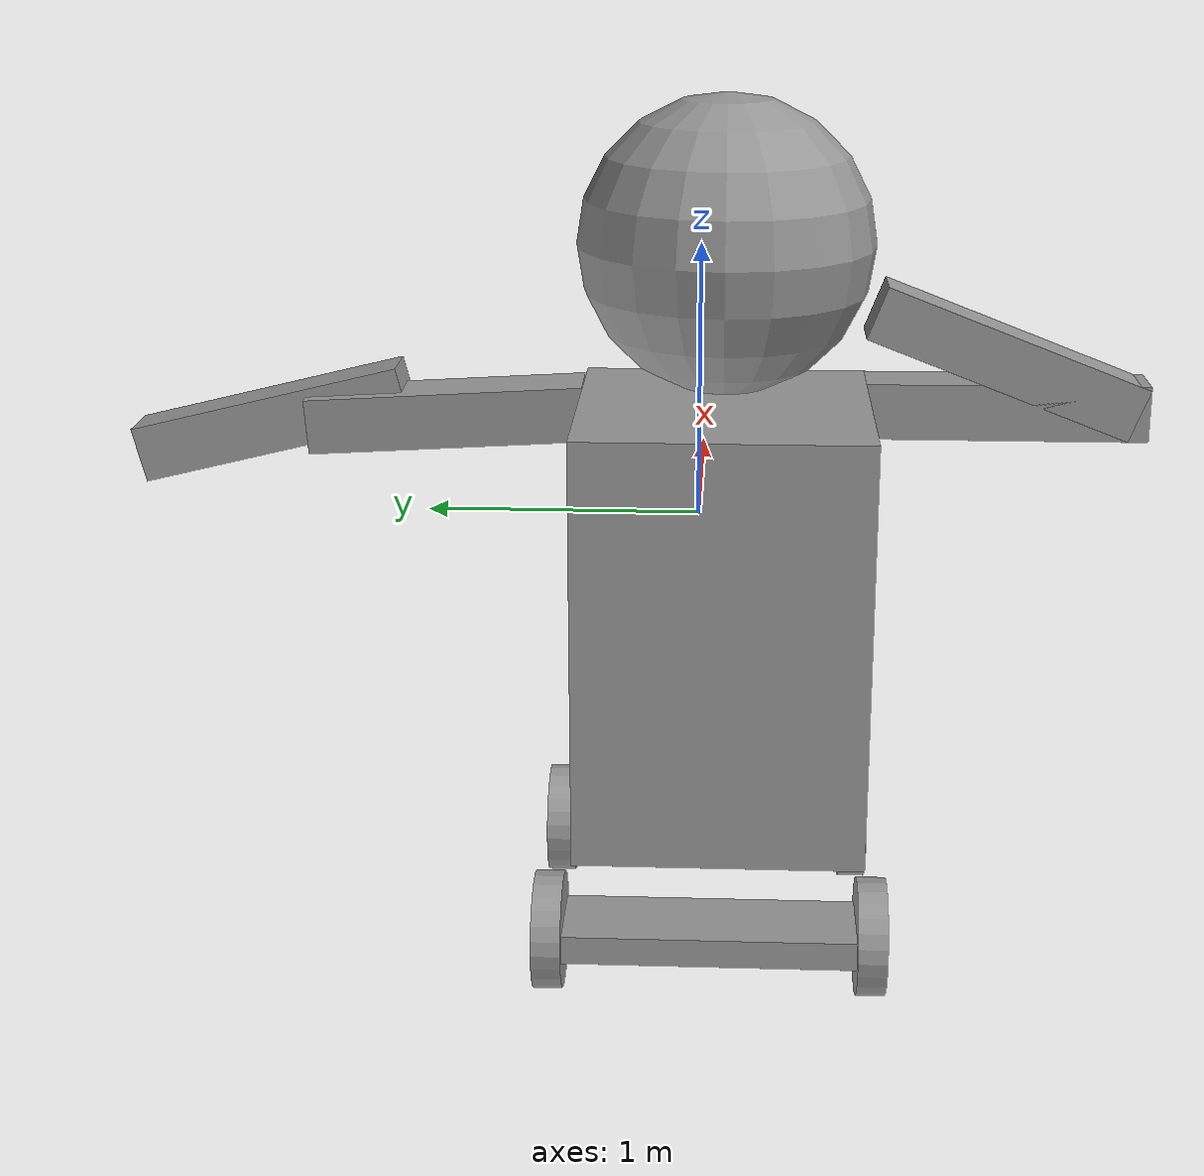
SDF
<?xml version='1.0'?>
<sdf version='1.7'>
  <model name='humanoid_robot'>
    <scale>200 200 200</scale>
    <link name='link_1'>
      <inertial>
        <mass>2.10479</mass>
        <inertia>
          <ixx>0.952439</ixx>
          <ixy>0</ixy>
          <ixz>0</ixz>
          <iyy>0.952439</iyy>
          <iyz>0</iyz>
          <izz>0.350798</izz>
        </inertia>
        <pose>0 0 0 0 -0 0</pose>
      </inertial>
      <pose>-0.448722 -0.08924 -0.419518 0 -0 0</pose>
      <gravity>1</gravity>
      <self_collide>0</self_collide>
      <kinematic>0</kinematic>
      <enable_wind>0</enable_wind>
      <visual name='visual'>
        <pose>0 0 0.2 0 -0 0</pose>
        <geometry>
          <box>
            <size>1 1 1.5</size>
          </box>
        </geometry>
        <material>
          <lighting>1</lighting>
          <script>
            <uri>file://media/materials/scripts/gazebo.material</uri>
            <name>Gazebo/Grey</name>
          </script>
          <shader type='pixel'>
            <normal_map>__default__</normal_map>
          </shader>
          <ambient>0.3 0.3 0.3 1</ambient>
          <diffuse>0.7 0.7 0.7 1</diffuse>
          <specular>0.01 0.01 0.01 1</specular>
          <emissive>0 0 0 1</emissive>
        </material>
        <transparency>0</transparency>
        <cast_shadows>1</cast_shadows>
      </visual>
      <collision name='collision'>
        <laser_retro>0</laser_retro>
        <max_contacts>10</max_contacts>
        <pose>0 0 0.2 0 -0 0</pose>
        <geometry>
          <box>
            <size>1 1 1.5</size>
          </box>
        </geometry>
        <surface>
          <friction>
            <ode>
              <mu>1</mu>
              <mu2>1</mu2>
              <fdir1>0 0 0</fdir1>
              <slip1>0</slip1>
              <slip2>0</slip2>
            </ode>
            <torsional>
              <coefficient>1</coefficient>
              <patch_radius>0</patch_radius>
              <surface_radius>0</surface_radius>
              <use_patch_radius>1</use_patch_radius>
              <ode>
                <slip>0</slip>
              </ode>
            </torsional>
          </friction>
          <bounce>
            <restitution_coefficient>0</restitution_coefficient>
            <threshold>1e+06</threshold>
          </bounce>
          <contact>
            <collide_without_contact>0</collide_without_contact>
            <collide_without_contact_bitmask>1</collide_without_contact_bitmask>
            <collide_bitmask>1</collide_bitmask>
            <ode>
              <soft_cfm>0</soft_cfm>
              <soft_erp>0.2</soft_erp>
              <kp>1e+13</kp>
              <kd>1</kd>
              <max_vel>0.01</max_vel>
              <min_depth>0</min_depth>
            </ode>
            <bullet>
              <split_impulse>1</split_impulse>
              <split_impulse_penetration_threshold>-0.01</split_impulse_penetration_threshold>
              <soft_cfm>0</soft_cfm>
              <soft_erp>0.2</soft_erp>
              <kp>1e+13</kp>
              <kd>1</kd>
            </bullet>
          </contact>
        </surface>
      </collision>
    </link>
    <link name='link_4'>
      <inertial>
        <mass>1</mass>
        <inertia>
          <ixx>0.1</ixx>
          <ixy>0</ixy>
          <ixz>0</ixz>
          <iyy>0.1</iyy>
          <iyz>0</iyz>
          <izz>0.1</izz>
        </inertia>
        <pose>0 0 0 0 -0 0</pose>
      </inertial>
      <pose>-0.448722 -0.08924 1.08048 0 -0 0</pose>
      <gravity>1</gravity>
      <self_collide>0</self_collide>
      <kinematic>0</kinematic>
      <enable_wind>0</enable_wind>
      <visual name='visual'>
        <pose>0 0 0 0 -0 0</pose>
        <geometry>
          <sphere>
            <radius>0.5</radius>
          </sphere>
        </geometry>
        <material>
          <lighting>1</lighting>
          <script>
            <uri>file://media/materials/scripts/gazebo.material</uri>
            <name>Gazebo/Grey</name>
          </script>
          <shader type='pixel'>
            <normal_map>__default__</normal_map>
          </shader>
          <ambient>0.3 0.3 0.3 1</ambient>
          <diffuse>0.7 0.7 0.7 1</diffuse>
          <specular>0.01 0.01 0.01 1</specular>
          <emissive>0 0 0 1</emissive>
        </material>
        <transparency>0</transparency>
        <cast_shadows>1</cast_shadows>
      </visual>
      <collision name='collision'>
        <laser_retro>0</laser_retro>
        <max_contacts>10</max_contacts>
        <pose>0 0 0 0 -0 0</pose>
        <geometry>
          <sphere>
            <radius>0.5</radius>
          </sphere>
        </geometry>
        <surface>
          <friction>
            <ode>
              <mu>1</mu>
              <mu2>1</mu2>
              <fdir1>0 0 0</fdir1>
              <slip1>0</slip1>
              <slip2>0</slip2>
            </ode>
            <torsional>
              <coefficient>1</coefficient>
              <patch_radius>0</patch_radius>
              <surface_radius>0</surface_radius>
              <use_patch_radius>1</use_patch_radius>
              <ode>
                <slip>0</slip>
              </ode>
            </torsional>
          </friction>
          <bounce>
            <restitution_coefficient>0</restitution_coefficient>
            <threshold>1e+06</threshold>
          </bounce>
          <contact>
            <collide_without_contact>0</collide_without_contact>
            <collide_without_contact_bitmask>1</collide_without_contact_bitmask>
            <collide_bitmask>1</collide_bitmask>
            <ode>
              <soft_cfm>0</soft_cfm>
              <soft_erp>0.2</soft_erp>
              <kp>1e+13</kp>
              <kd>1</kd>
              <max_vel>0.01</max_vel>
              <min_depth>0</min_depth>
            </ode>
            <bullet>
              <split_impulse>1</split_impulse>
              <split_impulse_penetration_threshold>-0.01</split_impulse_penetration_threshold>
              <soft_cfm>0</soft_cfm>
              <soft_erp>0.2</soft_erp>
              <kp>1e+13</kp>
              <kd>1</kd>
            </bullet>
          </contact>
        </surface>
      </collision>
    </link>
    <link name='link_5'>
      <inertial>
        <mass>1</mass>
        <inertia>
          <ixx>0.166667</ixx>
          <ixy>0</ixy>
          <ixz>0</ixz>
          <iyy>0.166667</iyy>
          <iyz>0</iyz>
          <izz>0.166667</izz>
        </inertia>
        <pose>0 0 0 0 -0 0</pose>
      </inertial>
      <pose>-0.088722 0.91076 0.390482 -0.06 -0.04 0</pose>
      <gravity>1</gravity>
      <self_collide>0</self_collide>
      <kinematic>0</kinematic>
      <enable_wind>0</enable_wind>
      <visual name='visual'>
        <pose>0 0 0 0 -0 0</pose>
        <geometry>
          <box>
            <size>0.2 1 0.2</size>
          </box>
        </geometry>
        <material>
          <lighting>1</lighting>
          <script>
            <uri>file://media/materials/scripts/gazebo.material</uri>
            <name>Gazebo/Grey</name>
          </script>
          <shader type='pixel'>
            <normal_map>__default__</normal_map>
          </shader>
          <ambient>0.3 0.3 0.3 1</ambient>
          <diffuse>0.7 0.7 0.7 1</diffuse>
          <specular>0.01 0.01 0.01 1</specular>
          <emissive>0 0 0 1</emissive>
        </material>
        <transparency>0</transparency>
        <cast_shadows>1</cast_shadows>
      </visual>
      <collision name='collision'>
        <laser_retro>0</laser_retro>
        <max_contacts>10</max_contacts>
        <pose>0 0 0 0 -0 0</pose>
        <geometry>
          <box>
            <size>0.2 1 0.2</size>
          </box>
        </geometry>
        <surface>
          <friction>
            <ode>
              <mu>1</mu>
              <mu2>1</mu2>
              <fdir1>0 0 0</fdir1>
              <slip1>0</slip1>
              <slip2>0</slip2>
            </ode>
            <torsional>
              <coefficient>1</coefficient>
              <patch_radius>0</patch_radius>
              <surface_radius>0</surface_radius>
              <use_patch_radius>1</use_patch_radius>
              <ode>
                <slip>0</slip>
              </ode>
            </torsional>
          </friction>
          <bounce>
            <restitution_coefficient>0</restitution_coefficient>
            <threshold>1e+06</threshold>
          </bounce>
          <contact>
            <collide_without_contact>0</collide_without_contact>
            <collide_without_contact_bitmask>1</collide_without_contact_bitmask>
            <collide_bitmask>1</collide_bitmask>
            <ode>
              <soft_cfm>0</soft_cfm>
              <soft_erp>0.2</soft_erp>
              <kp>1e+13</kp>
              <kd>1</kd>
              <max_vel>0.01</max_vel>
              <min_depth>0</min_depth>
            </ode>
            <bullet>
              <split_impulse>1</split_impulse>
              <split_impulse_penetration_threshold>-0.01</split_impulse_penetration_threshold>
              <soft_cfm>0</soft_cfm>
              <soft_erp>0.2</soft_erp>
              <kp>1e+13</kp>
              <kd>1</kd>
            </bullet>
          </contact>
        </surface>
      </collision>
    </link>
    <link name='link_5_clone'>
      <inertial>
        <mass>1</mass>
        <inertia>
          <ixx>0.166667</ixx>
          <ixy>0</ixy>
          <ixz>0</ixz>
          <iyy>0.166667</iyy>
          <iyz>0</iyz>
          <izz>0.166667</izz>
        </inertia>
        <pose>0 0 0 0 -0 0</pose>
      </inertial>
      <pose>-0.048722 -1.08924 0.430482 0 -0 0</pose>
      <gravity>1</gravity>
      <self_collide>0</self_collide>
      <kinematic>0</kinematic>
      <enable_wind>0</enable_wind>
      <visual name='visual'>
        <pose>0 0 0 0 -0 0</pose>
        <geometry>
          <box>
            <size>0.2 1 0.2</size>
          </box>
        </geometry>
        <material>
          <lighting>1</lighting>
          <script>
            <uri>file://media/materials/scripts/gazebo.material</uri>
            <name>Gazebo/Grey</name>
          </script>
          <shader type='pixel'>
            <normal_map>__default__</normal_map>
          </shader>
          <ambient>0.3 0.3 0.3 1</ambient>
          <diffuse>0.7 0.7 0.7 1</diffuse>
          <specular>0.01 0.01 0.01 1</specular>
          <emissive>0 0 0 1</emissive>
        </material>
        <transparency>0</transparency>
        <cast_shadows>1</cast_shadows>
      </visual>
      <collision name='collision'>
        <laser_retro>0</laser_retro>
        <max_contacts>10</max_contacts>
        <pose>0 0 0 0 -0 0</pose>
        <geometry>
          <box>
            <size>0.2 1 0.2</size>
          </box>
        </geometry>
        <surface>
          <friction>
            <ode>
              <mu>1</mu>
              <mu2>1</mu2>
              <fdir1>0 0 0</fdir1>
              <slip1>0</slip1>
              <slip2>0</slip2>
            </ode>
            <torsional>
              <coefficient>1</coefficient>
              <patch_radius>0</patch_radius>
              <surface_radius>0</surface_radius>
              <use_patch_radius>1</use_patch_radius>
              <ode>
                <slip>0</slip>
              </ode>
            </torsional>
          </friction>
          <bounce>
            <restitution_coefficient>0</restitution_coefficient>
            <threshold>1e+06</threshold>
          </bounce>
          <contact>
            <collide_without_contact>0</collide_without_contact>
            <collide_without_contact_bitmask>1</collide_without_contact_bitmask>
            <collide_bitmask>1</collide_bitmask>
            <ode>
              <soft_cfm>0</soft_cfm>
              <soft_erp>0.2</soft_erp>
              <kp>1e+13</kp>
              <kd>1</kd>
              <max_vel>0.01</max_vel>
              <min_depth>0</min_depth>
            </ode>
            <bullet>
              <split_impulse>1</split_impulse>
              <split_impulse_penetration_threshold>-0.01</split_impulse_penetration_threshold>
              <soft_cfm>0</soft_cfm>
              <soft_erp>0.2</soft_erp>
              <kp>1e+13</kp>
              <kd>1</kd>
            </bullet>
          </contact>
        </surface>
      </collision>
    </link>
    <link name='link_5_clone_clone'>
      <inertial>
        <mass>1</mass>
        <inertia>
          <ixx>0.166667</ixx>
          <ixy>0</ixy>
          <ixz>0</ixz>
          <iyy>0.166667</iyy>
          <iyz>0</iyz>
          <izz>0.166667</izz>
        </inertia>
        <pose>0 0 0 0 -0 0</pose>
      </inertial>
      <pose>-0.048722 -1.08689 0.604392 0.369688 -0 0</pose>
      <gravity>1</gravity>
      <self_collide>0</self_collide>
      <kinematic>0</kinematic>
      <enable_wind>0</enable_wind>
      <visual name='visual'>
        <pose>0 0 0 0 -0 0</pose>
        <geometry>
          <box>
            <size>0.2 1 0.2</size>
          </box>
        </geometry>
        <material>
          <lighting>1</lighting>
          <script>
            <uri>file://media/materials/scripts/gazebo.material</uri>
            <name>Gazebo/Grey</name>
          </script>
          <shader type='pixel'>
            <normal_map>__default__</normal_map>
          </shader>
          <ambient>0.3 0.3 0.3 1</ambient>
          <diffuse>0.7 0.7 0.7 1</diffuse>
          <specular>0.01 0.01 0.01 1</specular>
          <emissive>0 0 0 1</emissive>
        </material>
        <transparency>0</transparency>
        <cast_shadows>1</cast_shadows>
      </visual>
      <collision name='collision'>
        <laser_retro>0</laser_retro>
        <max_contacts>10</max_contacts>
        <pose>0 0 0 0 -0 0</pose>
        <geometry>
          <box>
            <size>0.2 1 0.2</size>
          </box>
        </geometry>
        <surface>
          <friction>
            <ode>
              <mu>1</mu>
              <mu2>1</mu2>
              <fdir1>0 0 0</fdir1>
              <slip1>0</slip1>
              <slip2>0</slip2>
            </ode>
            <torsional>
              <coefficient>1</coefficient>
              <patch_radius>0</patch_radius>
              <surface_radius>0</surface_radius>
              <use_patch_radius>1</use_patch_radius>
              <ode>
                <slip>0</slip>
              </ode>
            </torsional>
          </friction>
          <bounce>
            <restitution_coefficient>0</restitution_coefficient>
            <threshold>1e+06</threshold>
          </bounce>
          <contact>
            <collide_without_contact>0</collide_without_contact>
            <collide_without_contact_bitmask>1</collide_without_contact_bitmask>
            <collide_bitmask>1</collide_bitmask>
            <ode>
              <soft_cfm>0</soft_cfm>
              <soft_erp>0.2</soft_erp>
              <kp>1e+13</kp>
              <kd>1</kd>
              <max_vel>0.01</max_vel>
              <min_depth>0</min_depth>
            </ode>
            <bullet>
              <split_impulse>1</split_impulse>
              <split_impulse_penetration_threshold>-0.01</split_impulse_penetration_threshold>
              <soft_cfm>0</soft_cfm>
              <soft_erp>0.2</soft_erp>
              <kp>1e+13</kp>
              <kd>1</kd>
            </bullet>
          </contact>
        </surface>
      </collision>
    </link>
    <link name='link_5_clone_clone_0'>
      <inertial>
        <mass>1</mass>
        <inertia>
          <ixx>0.166667</ixx>
          <ixy>0</ixy>
          <ixz>0</ixz>
          <iyy>0.166667</iyy>
          <iyz>0</iyz>
          <izz>0.166667</izz>
        </inertia>
        <pose>0 0 0 0 -0 0</pose>
      </inertial>
      <pose>-0.043643 1.55059 0.350025 -0.239275 0 0</pose>
      <gravity>1</gravity>
      <self_collide>0</self_collide>
      <kinematic>0</kinematic>
      <enable_wind>0</enable_wind>
      <visual name='visual'>
        <pose>0 0 0 0 -0 0</pose>
        <geometry>
          <box>
            <size>0.2 1 0.2</size>
          </box>
        </geometry>
        <material>
          <lighting>1</lighting>
          <script>
            <uri>file://media/materials/scripts/gazebo.material</uri>
            <name>Gazebo/Grey</name>
          </script>
          <shader type='pixel'>
            <normal_map>__default__</normal_map>
          </shader>
          <ambient>0.3 0.3 0.3 1</ambient>
          <diffuse>0.7 0.7 0.7 1</diffuse>
          <specular>0.01 0.01 0.01 1</specular>
          <emissive>0 0 0 1</emissive>
        </material>
        <transparency>0</transparency>
        <cast_shadows>1</cast_shadows>
      </visual>
      <collision name='collision'>
        <laser_retro>0</laser_retro>
        <max_contacts>10</max_contacts>
        <pose>0 0 0 0 -0 0</pose>
        <geometry>
          <box>
            <size>0.2 1 0.2</size>
          </box>
        </geometry>
        <surface>
          <friction>
            <ode>
              <mu>1</mu>
              <mu2>1</mu2>
              <fdir1>0 0 0</fdir1>
              <slip1>0</slip1>
              <slip2>0</slip2>
            </ode>
            <torsional>
              <coefficient>1</coefficient>
              <patch_radius>0</patch_radius>
              <surface_radius>0</surface_radius>
              <use_patch_radius>1</use_patch_radius>
              <ode>
                <slip>0</slip>
              </ode>
            </torsional>
          </friction>
          <bounce>
            <restitution_coefficient>0</restitution_coefficient>
            <threshold>1e+06</threshold>
          </bounce>
          <contact>
            <collide_without_contact>0</collide_without_contact>
            <collide_without_contact_bitmask>1</collide_without_contact_bitmask>
            <collide_bitmask>1</collide_bitmask>
            <ode>
              <soft_cfm>0</soft_cfm>
              <soft_erp>0.2</soft_erp>
              <kp>1e+13</kp>
              <kd>1</kd>
              <max_vel>0.01</max_vel>
              <min_depth>0</min_depth>
            </ode>
            <bullet>
              <split_impulse>1</split_impulse>
              <split_impulse_penetration_threshold>-0.01</split_impulse_penetration_threshold>
              <soft_cfm>0</soft_cfm>
              <soft_erp>0.2</soft_erp>
              <kp>1e+13</kp>
              <kd>1</kd>
            </bullet>
          </contact>
        </surface>
      </collision>
    </link>
    <model name='robot'>
      <link name='link_1'>
        <inertial>
          <mass>1</mass>
          <inertia>
            <ixx>0.166667</ixx>
            <ixy>0</ixy>
            <ixz>0</ixz>
            <iyy>0.166667</iyy>
            <iyz>0</iyz>
            <izz>0.166667</izz>
          </inertia>
          <pose>0 0 0 0 -0 0</pose>
        </inertial>
        <pose>0 0 0 0 -0 0</pose>
        <gravity>1</gravity>
        <self_collide>0</self_collide>
        <kinematic>0</kinematic>
        <enable_wind>0</enable_wind>
        <visual name='visual'>
          <pose>0 0 0 0 -0 0</pose>
          <geometry>
            <box>
              <size>0.3 1 0.1</size>
            </box>
          </geometry>
          <material>
            <lighting>1</lighting>
            <script>
              <uri>file://media/materials/scripts/gazebo.material</uri>
              <name>Gazebo/Grey</name>
            </script>
            <shader type='pixel'>
              <normal_map>__default__</normal_map>
            </shader>
            <ambient>0.3 0.3 0.3 1</ambient>
            <diffuse>0.7 0.7 0.7 1</diffuse>
            <specular>0.01 0.01 0.01 1</specular>
            <emissive>0 0 0 1</emissive>
          </material>
          <transparency>0</transparency>
          <cast_shadows>1</cast_shadows>
        </visual>
        <collision name='collision'>
          <laser_retro>0</laser_retro>
          <max_contacts>10</max_contacts>
          <pose>0 0 0 0 -0 0</pose>
          <geometry>
            <box>
              <size>0.3 1 0.1</size>
            </box>
          </geometry>
          <surface>
            <friction>
              <ode>
                <mu>1</mu>
                <mu2>1</mu2>
                <fdir1>0 0 0</fdir1>
                <slip1>0</slip1>
                <slip2>0</slip2>
              </ode>
              <torsional>
                <coefficient>1</coefficient>
                <patch_radius>0</patch_radius>
                <surface_radius>0</surface_radius>
                <use_patch_radius>1</use_patch_radius>
                <ode>
                  <slip>0</slip>
                </ode>
              </torsional>
            </friction>
            <bounce>
              <restitution_coefficient>0</restitution_coefficient>
              <threshold>1e+06</threshold>
            </bounce>
            <contact>
              <collide_without_contact>0</collide_without_contact>
              <collide_without_contact_bitmask>1</collide_without_contact_bitmask>
              <collide_bitmask>1</collide_bitmask>
              <ode>
                <soft_cfm>0</soft_cfm>
                <soft_erp>0.2</soft_erp>
                <kp>1e+13</kp>
                <kd>1</kd>
                <max_vel>0.01</max_vel>
                <min_depth>0</min_depth>
              </ode>
              <bullet>
                <split_impulse>1</split_impulse>
                <split_impulse_penetration_threshold>-0.01</split_impulse_penetration_threshold>
                <soft_cfm>0</soft_cfm>
                <soft_erp>0.2</soft_erp>
                <kp>1e+13</kp>
                <kd>1</kd>
              </bullet>
            </contact>
          </surface>
        </collision>
      </link>
      <link name='link_3_clone'>
        <inertial>
          <mass>1</mass>
          <inertia>
            <ixx>0.145833</ixx>
            <ixy>0</ixy>
            <ixz>0</ixz>
            <iyy>0.145833</iyy>
            <iyz>0</iyz>
            <izz>0.125</izz>
          </inertia>
          <pose>0 0 0 0 -0 0</pose>
        </inertial>
        <pose>0 -0.550019 0 1.5707 -0 0</pose>
        <gravity>1</gravity>
        <self_collide>0</self_collide>
        <kinematic>0</kinematic>
        <enable_wind>0</enable_wind>
        <visual name='visual'>
          <pose>0 0 0 0 -0 0</pose>
          <geometry>
            <cylinder>
              <radius>0.2</radius>
              <length>0.1</length>
            </cylinder>
          </geometry>
          <material>
            <lighting>1</lighting>
            <script>
              <uri>file://media/materials/scripts/gazebo.material</uri>
              <name>Gazebo/Grey</name>
            </script>
            <shader type='pixel'>
              <normal_map>__default__</normal_map>
            </shader>
            <ambient>0.3 0.3 0.3 1</ambient>
            <diffuse>0.7 0.7 0.7 1</diffuse>
            <specular>0.01 0.01 0.01 1</specular>
            <emissive>0 0 0 1</emissive>
          </material>
          <transparency>0</transparency>
          <cast_shadows>1</cast_shadows>
        </visual>
        <collision name='collision'>
          <laser_retro>0</laser_retro>
          <max_contacts>10</max_contacts>
          <pose>0 0 0 0 -0 0</pose>
          <geometry>
            <cylinder>
              <radius>0.2</radius>
              <length>0.1</length>
            </cylinder>
          </geometry>
          <surface>
            <friction>
              <ode>
                <mu>1</mu>
                <mu2>1</mu2>
                <fdir1>0 0 0</fdir1>
                <slip1>0</slip1>
                <slip2>0</slip2>
              </ode>
              <torsional>
                <coefficient>1</coefficient>
                <patch_radius>0</patch_radius>
                <surface_radius>0</surface_radius>
                <use_patch_radius>1</use_patch_radius>
                <ode>
                  <slip>0</slip>
                </ode>
              </torsional>
            </friction>
            <bounce>
              <restitution_coefficient>0</restitution_coefficient>
              <threshold>1e+06</threshold>
            </bounce>
            <contact>
              <collide_without_contact>0</collide_without_contact>
              <collide_without_contact_bitmask>1</collide_without_contact_bitmask>
              <collide_bitmask>1</collide_bitmask>
              <ode>
                <soft_cfm>0</soft_cfm>
                <soft_erp>0.2</soft_erp>
                <kp>1e+13</kp>
                <kd>1</kd>
                <max_vel>0.01</max_vel>
                <min_depth>0</min_depth>
              </ode>
              <bullet>
                <split_impulse>1</split_impulse>
                <split_impulse_penetration_threshold>-0.01</split_impulse_penetration_threshold>
                <soft_cfm>0</soft_cfm>
                <soft_erp>0.2</soft_erp>
                <kp>1e+13</kp>
                <kd>1</kd>
              </bullet>
            </contact>
          </surface>
        </collision>
      </link>
      <link name='link_3_clone_clone'>
        <inertial>
          <mass>1</mass>
          <inertia>
            <ixx>0.145833</ixx>
            <ixy>0</ixy>
            <ixz>0</ixz>
            <iyy>0.145833</iyy>
            <iyz>0</iyz>
            <izz>0.125</izz>
          </inertia>
          <pose>0 0 0 0 -0 0</pose>
        </inertial>
        <pose>0 0.550019 0 1.5707 -0 0</pose>
        <gravity>1</gravity>
        <self_collide>0</self_collide>
        <kinematic>0</kinematic>
        <enable_wind>0</enable_wind>
        <visual name='visual'>
          <pose>0 0 0 0 -0 0</pose>
          <geometry>
            <cylinder>
              <radius>0.2</radius>
              <length>0.1</length>
            </cylinder>
          </geometry>
          <material>
            <lighting>1</lighting>
            <script>
              <uri>file://media/materials/scripts/gazebo.material</uri>
              <name>Gazebo/Grey</name>
            </script>
            <shader type='pixel'>
              <normal_map>__default__</normal_map>
            </shader>
            <ambient>0.3 0.3 0.3 1</ambient>
            <diffuse>0.7 0.7 0.7 1</diffuse>
            <specular>0.01 0.01 0.01 1</specular>
            <emissive>0 0 0 1</emissive>
          </material>
          <transparency>0</transparency>
          <cast_shadows>1</cast_shadows>
        </visual>
        <collision name='collision'>
          <laser_retro>0</laser_retro>
          <max_contacts>10</max_contacts>
          <pose>0 0 0 0 -0 0</pose>
          <geometry>
            <cylinder>
              <radius>0.2</radius>
              <length>0.1</length>
            </cylinder>
          </geometry>
          <surface>
            <friction>
              <ode>
                <mu>1</mu>
                <mu2>1</mu2>
                <fdir1>0 0 0</fdir1>
                <slip1>0</slip1>
                <slip2>0</slip2>
              </ode>
              <torsional>
                <coefficient>1</coefficient>
                <patch_radius>0</patch_radius>
                <surface_radius>0</surface_radius>
                <use_patch_radius>1</use_patch_radius>
                <ode>
                  <slip>0</slip>
                </ode>
              </torsional>
            </friction>
            <bounce>
              <restitution_coefficient>0</restitution_coefficient>
              <threshold>1e+06</threshold>
            </bounce>
            <contact>
              <collide_without_contact>0</collide_without_contact>
              <collide_without_contact_bitmask>1</collide_without_contact_bitmask>
              <collide_bitmask>1</collide_bitmask>
              <ode>
                <soft_cfm>0</soft_cfm>
                <soft_erp>0.2</soft_erp>
                <kp>1e+13</kp>
                <kd>1</kd>
                <max_vel>0.01</max_vel>
                <min_depth>0</min_depth>
              </ode>
              <bullet>
                <split_impulse>1</split_impulse>
                <split_impulse_penetration_threshold>-0.01</split_impulse_penetration_threshold>
                <soft_cfm>0</soft_cfm>
                <soft_erp>0.2</soft_erp>
                <kp>1e+13</kp>
                <kd>1</kd>
              </bullet>
            </contact>
          </surface>
        </collision>
      </link>
      <joint name='link_1_JOINT_1' type='revolute'>
        <parent>link_1</parent>
        <child>link_3_clone</child>
        <pose>0 0 0 0 -0 0</pose>
        <axis>
          <xyz>0 0 1</xyz>
          <limit>
            <lower>-1.79769e+308</lower>
            <upper>1.79769e+308</upper>
            <effort>-1</effort>
            <velocity>-1</velocity>
          </limit>
          <dynamics>
            <spring_reference>0</spring_reference>
            <spring_stiffness>0</spring_stiffness>
            <damping>0</damping>
          </dynamics>
        </axis>
        <physics>
          <ode>
            <limit>
              <cfm>0</cfm>
              <erp>0.2</erp>
            </limit>
            <suspension>
              <cfm>0</cfm>
              <erp>0.2</erp>
            </suspension>
          </ode>
        </physics>
      </joint>
      <joint name='link_1_JOINT_3' type='revolute'>
        <parent>link_1</parent>
        <child>link_3_clone_clone</child>
        <pose>0 0 0 0 -0 0</pose>
        <axis>
          <xyz>0 0 1</xyz>
          <limit>
            <lower>-1.79769e+308</lower>
            <upper>1.79769e+308</upper>
            <effort>-1</effort>
            <velocity>-1</velocity>
          </limit>
          <dynamics>
            <spring_reference>0</spring_reference>
            <spring_stiffness>0</spring_stiffness>
            <damping>0</damping>
          </dynamics>
        </axis>
        <physics>
          <ode>
            <limit>
              <cfm>0</cfm>
              <erp>0.2</erp>
            </limit>
            <suspension>
              <cfm>0</cfm>
              <erp>0.2</erp>
            </suspension>
          </ode>
        </physics>
      </joint>
      <static>0</static>
      <allow_auto_disable>1</allow_auto_disable>
      <pose>-0.041176 -0.042224 -1.22566 0 -0 0</pose>
    </model>
    <model name='robot_0'>
      <link name='link_1'>
        <inertial>
          <mass>1</mass>
          <inertia>
            <ixx>0.166667</ixx>
            <ixy>0</ixy>
            <ixz>0</ixz>
            <iyy>0.166667</iyy>
            <iyz>0</iyz>
            <izz>0.166667</izz>
          </inertia>
          <pose>0 0 0 0 -0 0</pose>
        </inertial>
        <pose>0 0 0 0 -0 0</pose>
        <gravity>1</gravity>
        <self_collide>0</self_collide>
        <kinematic>0</kinematic>
        <enable_wind>0</enable_wind>
        <visual name='visual'>
          <pose>0 0 0 0 -0 0</pose>
          <geometry>
            <box>
              <size>0.3 1 0.1</size>
            </box>
          </geometry>
          <material>
            <lighting>1</lighting>
            <script>
              <uri>file://media/materials/scripts/gazebo.material</uri>
              <name>Gazebo/Grey</name>
            </script>
            <shader type='pixel'>
              <normal_map>__default__</normal_map>
            </shader>
            <ambient>0.3 0.3 0.3 1</ambient>
            <diffuse>0.7 0.7 0.7 1</diffuse>
            <specular>0.01 0.01 0.01 1</specular>
            <emissive>0 0 0 1</emissive>
          </material>
          <transparency>0</transparency>
          <cast_shadows>1</cast_shadows>
        </visual>
        <collision name='collision'>
          <laser_retro>0</laser_retro>
          <max_contacts>10</max_contacts>
          <pose>0 0 0 0 -0 0</pose>
          <geometry>
            <box>
              <size>0.3 1 0.1</size>
            </box>
          </geometry>
          <surface>
            <friction>
              <ode>
                <mu>1</mu>
                <mu2>1</mu2>
                <fdir1>0 0 0</fdir1>
                <slip1>0</slip1>
                <slip2>0</slip2>
              </ode>
              <torsional>
                <coefficient>1</coefficient>
                <patch_radius>0</patch_radius>
                <surface_radius>0</surface_radius>
                <use_patch_radius>1</use_patch_radius>
                <ode>
                  <slip>0</slip>
                </ode>
              </torsional>
            </friction>
            <bounce>
              <restitution_coefficient>0</restitution_coefficient>
              <threshold>1e+06</threshold>
            </bounce>
            <contact>
              <collide_without_contact>0</collide_without_contact>
              <collide_without_contact_bitmask>1</collide_without_contact_bitmask>
              <collide_bitmask>1</collide_bitmask>
              <ode>
                <soft_cfm>0</soft_cfm>
                <soft_erp>0.2</soft_erp>
                <kp>1e+13</kp>
                <kd>1</kd>
                <max_vel>0.01</max_vel>
                <min_depth>0</min_depth>
              </ode>
              <bullet>
                <split_impulse>1</split_impulse>
                <split_impulse_penetration_threshold>-0.01</split_impulse_penetration_threshold>
                <soft_cfm>0</soft_cfm>
                <soft_erp>0.2</soft_erp>
                <kp>1e+13</kp>
                <kd>1</kd>
              </bullet>
            </contact>
          </surface>
        </collision>
      </link>
      <link name='link_3_clone'>
        <inertial>
          <mass>1</mass>
          <inertia>
            <ixx>0.145833</ixx>
            <ixy>0</ixy>
            <ixz>0</ixz>
            <iyy>0.145833</iyy>
            <iyz>0</iyz>
            <izz>0.125</izz>
          </inertia>
          <pose>0 0 0 0 -0 0</pose>
        </inertial>
        <pose>0 -0.550019 0 1.5707 -0 0</pose>
        <gravity>1</gravity>
        <self_collide>0</self_collide>
        <kinematic>0</kinematic>
        <enable_wind>0</enable_wind>
        <visual name='visual'>
          <pose>0 0 0 0 -0 0</pose>
          <geometry>
            <cylinder>
              <radius>0.2</radius>
              <length>0.1</length>
            </cylinder>
          </geometry>
          <material>
            <lighting>1</lighting>
            <script>
              <uri>file://media/materials/scripts/gazebo.material</uri>
              <name>Gazebo/Grey</name>
            </script>
            <shader type='pixel'>
              <normal_map>__default__</normal_map>
            </shader>
            <ambient>0.3 0.3 0.3 1</ambient>
            <diffuse>0.7 0.7 0.7 1</diffuse>
            <specular>0.01 0.01 0.01 1</specular>
            <emissive>0 0 0 1</emissive>
          </material>
          <transparency>0</transparency>
          <cast_shadows>1</cast_shadows>
        </visual>
        <collision name='collision'>
          <laser_retro>0</laser_retro>
          <max_contacts>10</max_contacts>
          <pose>0 0 0 0 -0 0</pose>
          <geometry>
            <cylinder>
              <radius>0.2</radius>
              <length>0.1</length>
            </cylinder>
          </geometry>
          <surface>
            <friction>
              <ode>
                <mu>1</mu>
                <mu2>1</mu2>
                <fdir1>0 0 0</fdir1>
                <slip1>0</slip1>
                <slip2>0</slip2>
              </ode>
              <torsional>
                <coefficient>1</coefficient>
                <patch_radius>0</patch_radius>
                <surface_radius>0</surface_radius>
                <use_patch_radius>1</use_patch_radius>
                <ode>
                  <slip>0</slip>
                </ode>
              </torsional>
            </friction>
            <bounce>
              <restitution_coefficient>0</restitution_coefficient>
              <threshold>1e+06</threshold>
            </bounce>
            <contact>
              <collide_without_contact>0</collide_without_contact>
              <collide_without_contact_bitmask>1</collide_without_contact_bitmask>
              <collide_bitmask>1</collide_bitmask>
              <ode>
                <soft_cfm>0</soft_cfm>
                <soft_erp>0.2</soft_erp>
                <kp>1e+13</kp>
                <kd>1</kd>
                <max_vel>0.01</max_vel>
                <min_depth>0</min_depth>
              </ode>
              <bullet>
                <split_impulse>1</split_impulse>
                <split_impulse_penetration_threshold>-0.01</split_impulse_penetration_threshold>
                <soft_cfm>0</soft_cfm>
                <soft_erp>0.2</soft_erp>
                <kp>1e+13</kp>
                <kd>1</kd>
              </bullet>
            </contact>
          </surface>
        </collision>
      </link>
      <link name='link_3_clone_clone'>
        <inertial>
          <mass>1</mass>
          <inertia>
            <ixx>0.145833</ixx>
            <ixy>0</ixy>
            <ixz>0</ixz>
            <iyy>0.145833</iyy>
            <iyz>0</iyz>
            <izz>0.125</izz>
          </inertia>
          <pose>0 0 0 0 -0 0</pose>
        </inertial>
        <pose>0 0.550019 0 1.5707 -0 0</pose>
        <gravity>1</gravity>
        <self_collide>0</self_collide>
        <kinematic>0</kinematic>
        <enable_wind>0</enable_wind>
        <visual name='visual'>
          <pose>0 0 0 0 -0 0</pose>
          <geometry>
            <cylinder>
              <radius>0.2</radius>
              <length>0.1</length>
            </cylinder>
          </geometry>
          <material>
            <lighting>1</lighting>
            <script>
              <uri>file://media/materials/scripts/gazebo.material</uri>
              <name>Gazebo/Grey</name>
            </script>
            <shader type='pixel'>
              <normal_map>__default__</normal_map>
            </shader>
            <ambient>0.3 0.3 0.3 1</ambient>
            <diffuse>0.7 0.7 0.7 1</diffuse>
            <specular>0.01 0.01 0.01 1</specular>
            <emissive>0 0 0 1</emissive>
          </material>
          <transparency>0</transparency>
          <cast_shadows>1</cast_shadows>
        </visual>
        <collision name='collision'>
          <laser_retro>0</laser_retro>
          <max_contacts>10</max_contacts>
          <pose>0 0 0 0 -0 0</pose>
          <geometry>
            <cylinder>
              <radius>0.2</radius>
              <length>0.1</length>
            </cylinder>
          </geometry>
          <surface>
            <friction>
              <ode>
                <mu>1</mu>
                <mu2>1</mu2>
                <fdir1>0 0 0</fdir1>
                <slip1>0</slip1>
                <slip2>0</slip2>
              </ode>
              <torsional>
                <coefficient>1</coefficient>
                <patch_radius>0</patch_radius>
                <surface_radius>0</surface_radius>
                <use_patch_radius>1</use_patch_radius>
                <ode>
                  <slip>0</slip>
                </ode>
              </torsional>
            </friction>
            <bounce>
              <restitution_coefficient>0</restitution_coefficient>
              <threshold>1e+06</threshold>
            </bounce>
            <contact>
              <collide_without_contact>0</collide_without_contact>
              <collide_without_contact_bitmask>1</collide_without_contact_bitmask>
              <collide_bitmask>1</collide_bitmask>
              <ode>
                <soft_cfm>0</soft_cfm>
                <soft_erp>0.2</soft_erp>
                <kp>1e+13</kp>
                <kd>1</kd>
                <max_vel>0.01</max_vel>
                <min_depth>0</min_depth>
              </ode>
              <bullet>
                <split_impulse>1</split_impulse>
                <split_impulse_penetration_threshold>-0.01</split_impulse_penetration_threshold>
                <soft_cfm>0</soft_cfm>
                <soft_erp>0.2</soft_erp>
                <kp>1e+13</kp>
                <kd>1</kd>
              </bullet>
            </contact>
          </surface>
        </collision>
      </link>
      <joint name='link_1_JOINT_1' type='revolute'>
        <parent>link_1</parent>
        <child>link_3_clone</child>
        <pose>0 0 0 0 -0 0</pose>
        <axis>
          <xyz>0 0 1</xyz>
          <limit>
            <lower>-1.79769e+308</lower>
            <upper>1.79769e+308</upper>
            <effort>-1</effort>
            <velocity>-1</velocity>
          </limit>
          <dynamics>
            <spring_reference>0</spring_reference>
            <spring_stiffness>0</spring_stiffness>
            <damping>0</damping>
          </dynamics>
        </axis>
        <physics>
          <ode>
            <limit>
              <cfm>0</cfm>
              <erp>0.2</erp>
            </limit>
            <suspension>
              <cfm>0</cfm>
              <erp>0.2</erp>
            </suspension>
          </ode>
        </physics>
      </joint>
      <joint name='link_1_JOINT_3' type='revolute'>
        <parent>link_1</parent>
        <child>link_3_clone_clone</child>
        <pose>0 0 0 0 -0 0</pose>
        <axis>
          <xyz>0 0 1</xyz>
          <limit>
            <lower>-1.79769e+308</lower>
            <upper>1.79769e+308</upper>
            <effort>-1</effort>
            <velocity>-1</velocity>
          </limit>
          <dynamics>
            <spring_reference>0</spring_reference>
            <spring_stiffness>0</spring_stiffness>
            <damping>0</damping>
          </dynamics>
        </axis>
        <physics>
          <ode>
            <limit>
              <cfm>0</cfm>
              <erp>0.2</erp>
            </limit>
            <suspension>
              <cfm>0</cfm>
              <erp>0.2</erp>
            </suspension>
          </ode>
        </physics>
      </joint>
      <static>0</static>
      <allow_auto_disable>1</allow_auto_disable>
      <pose>-0.953654 -0.064519 -1.21068 0 -0 0</pose>
    </model>
    <joint name='link_1_JOINT_0' type='ball'>
      <parent>link_1</parent>
      <child>link_4</child>
      <pose>0 0 0 0 -0 0</pose>
      <physics>
        <ode>
          <limit>
            <cfm>0</cfm>
            <erp>0.2</erp>
          </limit>
          <suspension>
            <cfm>0</cfm>
            <erp>0.2</erp>
          </suspension>
        </ode>
      </physics>
    </joint>
    <joint name='link_1_JOINT_3' type='ball'>
      <parent>link_1</parent>
      <child>link_5</child>
      <pose>0 0 0 0 -0 0</pose>
      <physics>
        <ode>
          <limit>
            <cfm>0</cfm>
            <erp>0.2</erp>
          </limit>
          <suspension>
            <cfm>0</cfm>
            <erp>0.2</erp>
          </suspension>
        </ode>
      </physics>
    </joint>
    <joint name='link_1_JOINT_4' type='ball'>
      <parent>link_1</parent>
      <child>link_5_clone</child>
      <pose>0 0 0 0 -0 0</pose>
      <physics>
        <ode>
          <limit>
            <cfm>0</cfm>
            <erp>0.2</erp>
          </limit>
          <suspension>
            <cfm>0</cfm>
            <erp>0.2</erp>
          </suspension>
        </ode>
      </physics>
    </joint>
    <joint name='link_5_JOINT_10' type='revolute'>
      <parent>link_5</parent>
      <child>link_5_clone_clone_0</child>
      <pose>0 0 0 0 -0 0</pose>
      <axis>
        <xyz>1 0 0</xyz>
        <limit>
          <lower>-1.79769e+308</lower>
          <upper>1.79769e+308</upper>
          <effort>-1</effort>
          <velocity>-1</velocity>
        </limit>
        <dynamics>
          <spring_reference>0</spring_reference>
          <spring_stiffness>0</spring_stiffness>
          <damping>0</damping>
        </dynamics>
      </axis>
      <physics>
        <ode>
          <limit>
            <cfm>0</cfm>
            <erp>0.2</erp>
          </limit>
          <suspension>
            <cfm>0</cfm>
            <erp>0.2</erp>
          </suspension>
        </ode>
      </physics>
    </joint>
    <joint name='link_5_clone_JOINT_5' type='revolute'>
      <parent>link_5_clone</parent>
      <child>link_5_clone_clone</child>
      <pose>0 0 0 -0.01 0 0</pose>
      <axis>
        <xyz>1 0 0</xyz>
        <limit>
          <lower>-1.79769e+308</lower>
          <upper>1.79769e+308</upper>
          <effort>-1</effort>
          <velocity>-1</velocity>
        </limit>
        <dynamics>
          <spring_reference>0</spring_reference>
          <spring_stiffness>0</spring_stiffness>
          <damping>0</damping>
        </dynamics>
      </axis>
      <physics>
        <ode>
          <limit>
            <cfm>0</cfm>
            <erp>0.2</erp>
          </limit>
          <suspension>
            <cfm>0</cfm>
            <erp>0.2</erp>
          </suspension>
        </ode>
      </physics>
    </joint>
    <joint name='link_1_JOINT_1' type='fixed'>
      <parent>robot::link_1</parent>
      <child>link_1</child>
      <pose>0 0 0 0 -0 0</pose>
      <physics>
        <ode>
          <limit>
            <cfm>0</cfm>
            <erp>0.2</erp>
          </limit>
          <suspension>
            <cfm>0</cfm>
            <erp>0.2</erp>
          </suspension>
        </ode>
      </physics>
    </joint>
    <joint name='link_1_JOINT_2' type='fixed'>
      <parent>robot_0::link_1</parent>
      <child>link_1</child>
      <pose>0 0 0 0 -0 0</pose>
      <physics>
        <ode>
          <limit>
            <cfm>0</cfm>
            <erp>0.2</erp>
          </limit>
          <suspension>
            <cfm>0</cfm>
            <erp>0.2</erp>
          </suspension>
        </ode>
      </physics>
    </joint>
    <static>0</static>
    <allow_auto_disable>1</allow_auto_disable>
  </model>
</sdf>
